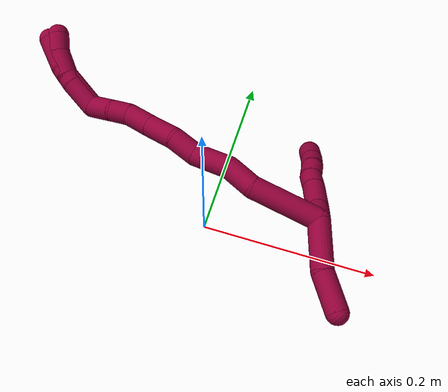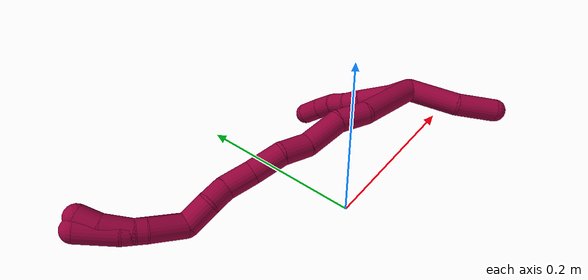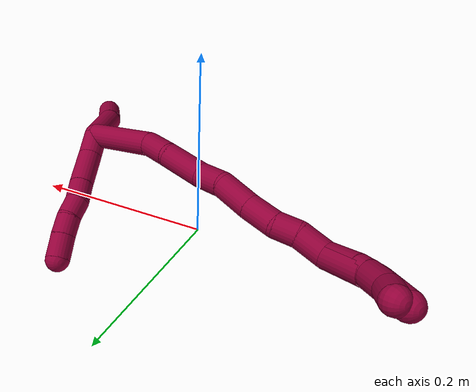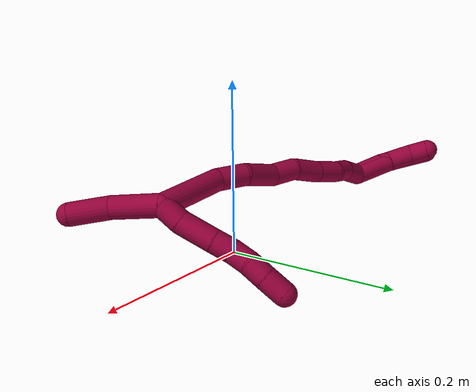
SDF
<sdf version="1.7">
 <world name="default">
  <model name="8">
   <static>0</static>
   <link name="8">
    <collision name="collision-cylinder-e_1_2_8">
     <pose>-0.009611 0.006423 0.005 -0.909395 -0.868093 0.445676</pose>
     <geometry><cylinder><radius>0.0125</radius><length>0.025189</length></cylinder></geometry>
     <surface>
      <friction><ode><mu>1.16</mu><mu2>1.16</mu2><slip1>0</slip1><slip2>0</slip2></ode></friction>
      <contact><ode><kp>1e+06</kp><kd>1</kd><max_vel>0</max_vel><min_depth>0.001</min_depth></ode></contact>
     </surface>
    </collision>
    <visual name="visual-cylinder-e_1_2_8">
     <pose>-0.009611 0.006423 0.005 -0.909395 -0.868093 0.445676</pose>
     <geometry><cylinder><radius>0.0125</radius><length>0.025189</length></cylinder></geometry>
     <material><ambient>0.584314 0 0.227451 1</ambient></material>
    </visual>
    <collision name="collision-cylinder-e_2_8_9">
     <pose>-0.031211 0.023173 0.02058 -0.773239 -0.681359 0.286662</pose>
     <geometry><cylinder><radius>0.0125</radius><length>0.03807</length></cylinder></geometry>
     <surface>
      <friction><ode><mu>1.16</mu><mu2>1.16</mu2><slip1>0</slip1><slip2>0</slip2></ode></friction>
      <contact><ode><kp>1e+06</kp><kd>1</kd><max_vel>0</max_vel><min_depth>0.001</min_depth></ode></contact>
     </surface>
    </collision>
    <visual name="visual-cylinder-e_2_8_9">
     <pose>-0.031211 0.023173 0.02058 -0.773239 -0.681359 0.286662</pose>
     <geometry><cylinder><radius>0.0125</radius><length>0.03807</length></cylinder></geometry>
     <material><ambient>0.584314 0 0.227451 1</ambient></material>
    </visual>
    <collision name="collision-cylinder-e_3_9_10">
     <pose>-0.049925 0.03865 0.037257 -0.701487 -0.700194 0.265615</pose>
     <geometry><cylinder><radius>0.0125</radius><length>0.020873</length></cylinder></geometry>
     <surface>
      <friction><ode><mu>1.16</mu><mu2>1.16</mu2><slip1>0</slip1><slip2>0</slip2></ode></friction>
      <contact><ode><kp>1e+06</kp><kd>1</kd><max_vel>0</max_vel><min_depth>0.001</min_depth></ode></contact>
     </surface>
    </collision>
    <visual name="visual-cylinder-e_3_9_10">
     <pose>-0.049925 0.03865 0.037257 -0.701487 -0.700194 0.265615</pose>
     <geometry><cylinder><radius>0.0125</radius><length>0.020873</length></cylinder></geometry>
     <material><ambient>0.584314 0 0.227451 1</ambient></material>
    </visual>
    <collision name="collision-cylinder-e_4_10_11">
     <pose>-0.062783 0.050522 0.047658 -1.0012 -0.655198 0.367648</pose>
     <geometry><cylinder><radius>0.0125</radius><length>0.020132</length></cylinder></geometry>
     <surface>
      <friction><ode><mu>1.16</mu><mu2>1.16</mu2><slip1>0</slip1><slip2>0</slip2></ode></friction>
      <contact><ode><kp>1e+06</kp><kd>1</kd><max_vel>0</max_vel><min_depth>0.001</min_depth></ode></contact>
     </surface>
    </collision>
    <visual name="visual-cylinder-e_4_10_11">
     <pose>-0.062783 0.050522 0.047658 -1.0012 -0.655198 0.367648</pose>
     <geometry><cylinder><radius>0.0125</radius><length>0.020132</length></cylinder></geometry>
     <material><ambient>0.584314 0 0.227451 1</ambient></material>
    </visual>
    <collision name="collision-cylinder-e_5_11_12">
     <pose>-0.076832 0.062711 0.056049 -0.928886 -0.859136 0.451196</pose>
     <geometry><cylinder><radius>0.0125</radius><length>0.020905</length></cylinder></geometry>
     <surface>
      <friction><ode><mu>1.16</mu><mu2>1.16</mu2><slip1>0</slip1><slip2>0</slip2></ode></friction>
      <contact><ode><kp>1e+06</kp><kd>1</kd><max_vel>0</max_vel><min_depth>0.001</min_depth></ode></contact>
     </surface>
    </collision>
    <visual name="visual-cylinder-e_5_11_12">
     <pose>-0.076832 0.062711 0.056049 -0.928886 -0.859136 0.451196</pose>
     <geometry><cylinder><radius>0.0125</radius><length>0.020905</length></cylinder></geometry>
     <material><ambient>0.584314 0 0.227451 1</ambient></material>
    </visual>
    <collision name="collision-cylinder-e_6_12_6">
     <pose>-0.094358 0.074002 0.065416 -0.834281 -0.885237 0.414069</pose>
     <geometry><cylinder><radius>0.0125</radius><length>0.024832</length></cylinder></geometry>
     <surface>
      <friction><ode><mu>1.16</mu><mu2>1.16</mu2><slip1>0</slip1><slip2>0</slip2></ode></friction>
      <contact><ode><kp>1e+06</kp><kd>1</kd><max_vel>0</max_vel><min_depth>0.001</min_depth></ode></contact>
     </surface>
    </collision>
    <visual name="visual-cylinder-e_6_12_6">
     <pose>-0.094358 0.074002 0.065416 -0.834281 -0.885237 0.414069</pose>
     <geometry><cylinder><radius>0.0125</radius><length>0.024832</length></cylinder></geometry>
     <material><ambient>0.584314 0 0.227451 1</ambient></material>
    </visual>
    <collision name="collision-cylinder-e_1_2_13">
     <pose>0.003458 -0.017698 -0.021387 2.45028 0.123938 0.341254</pose>
     <geometry><cylinder><radius>0.0125</radius><length>0.055949</length></cylinder></geometry>
     <surface>
      <friction><ode><mu>1.16</mu><mu2>1.16</mu2><slip1>0</slip1><slip2>0</slip2></ode></friction>
      <contact><ode><kp>1e+06</kp><kd>1</kd><max_vel>0</max_vel><min_depth>0.001</min_depth></ode></contact>
     </surface>
    </collision>
    <visual name="visual-cylinder-e_1_2_13">
     <pose>0.003458 -0.017698 -0.021387 2.45028 0.123938 0.341254</pose>
     <geometry><cylinder><radius>0.0125</radius><length>0.055949</length></cylinder></geometry>
     <material><ambient>0.584314 0 0.227451 1</ambient></material>
    </visual>
    <collision name="collision-cylinder-e_2_13_5">
     <pose>0.009038 -0.043984 -0.062944 2.73914 0.096477 0.464773</pose>
     <geometry><cylinder><radius>0.0125</radius><length>0.044051</length></cylinder></geometry>
     <surface>
      <friction><ode><mu>1.16</mu><mu2>1.16</mu2><slip1>0</slip1><slip2>0</slip2></ode></friction>
      <contact><ode><kp>1e+06</kp><kd>1</kd><max_vel>0</max_vel><min_depth>0.001</min_depth></ode></contact>
     </surface>
    </collision>
    <visual name="visual-cylinder-e_2_13_5">
     <pose>0.009038 -0.043984 -0.062944 2.73914 0.096477 0.464773</pose>
     <geometry><cylinder><radius>0.0125</radius><length>0.044051</length></cylinder></geometry>
     <material><ambient>0.584314 0 0.227451 1</ambient></material>
    </visual>
    <collision name="collision-cylinder-e_1_2_14">
     <pose>-0.001907 -0.015625 0.035219 0.417572 -0.049453 -0.01048</pose>
     <geometry><cylinder><radius>0.0125</radius><length>0.077153</length></cylinder></geometry>
     <surface>
      <friction><ode><mu>1.16</mu><mu2>1.16</mu2><slip1>0</slip1><slip2>0</slip2></ode></friction>
      <contact><ode><kp>1e+06</kp><kd>1</kd><max_vel>0</max_vel><min_depth>0.001</min_depth></ode></contact>
     </surface>
    </collision>
    <visual name="visual-cylinder-e_1_2_14">
     <pose>-0.001907 -0.015625 0.035219 0.417572 -0.049453 -0.01048</pose>
     <geometry><cylinder><radius>0.0125</radius><length>0.077153</length></cylinder></geometry>
     <material><ambient>0.584314 0 0.227451 1</ambient></material>
    </visual>
    <collision name="collision-cylinder-e_2_14_15">
     <pose>-0.007032 -0.033162 0.086709 0.11691 -0.193962 -0.011387</pose>
     <geometry><cylinder><radius>0.0125</radius><length>0.033392</length></cylinder></geometry>
     <surface>
      <friction><ode><mu>1.16</mu><mu2>1.16</mu2><slip1>0</slip1><slip2>0</slip2></ode></friction>
      <contact><ode><kp>1e+06</kp><kd>1</kd><max_vel>0</max_vel><min_depth>0.001</min_depth></ode></contact>
     </surface>
    </collision>
    <visual name="visual-cylinder-e_2_14_15">
     <pose>-0.007032 -0.033162 0.086709 0.11691 -0.193962 -0.011387</pose>
     <geometry><cylinder><radius>0.0125</radius><length>0.033392</length></cylinder></geometry>
     <material><ambient>0.584314 0 0.227451 1</ambient></material>
    </visual>
    <collision name="collision-cylinder-e_3_15_16">
     <pose>-0.018402 -0.042741 0.12104 0.401554 -0.393776 -0.081148</pose>
     <geometry><cylinder><radius>0.0125</radius><length>0.042493</length></cylinder></geometry>
     <surface>
      <friction><ode><mu>1.16</mu><mu2>1.16</mu2><slip1>0</slip1><slip2>0</slip2></ode></friction>
      <contact><ode><kp>1e+06</kp><kd>1</kd><max_vel>0</max_vel><min_depth>0.001</min_depth></ode></contact>
     </surface>
    </collision>
    <visual name="visual-cylinder-e_3_15_16">
     <pose>-0.018402 -0.042741 0.12104 0.401554 -0.393776 -0.081148</pose>
     <geometry><cylinder><radius>0.0125</radius><length>0.042493</length></cylinder></geometry>
     <material><ambient>0.584314 0 0.227451 1</ambient></material>
    </visual>
    <collision name="collision-cylinder-e_4_16_17">
     <pose>-0.028594 -0.053207 0.153908 0.186723 -0.134563 -0.012619</pose>
     <geometry><cylinder><radius>0.0125</radius><length>0.030415</length></cylinder></geometry>
     <surface>
      <friction><ode><mu>1.16</mu><mu2>1.16</mu2><slip1>0</slip1><slip2>0</slip2></ode></friction>
      <contact><ode><kp>1e+06</kp><kd>1</kd><max_vel>0</max_vel><min_depth>0.001</min_depth></ode></contact>
     </surface>
    </collision>
    <visual name="visual-cylinder-e_4_16_17">
     <pose>-0.028594 -0.053207 0.153908 0.186723 -0.134563 -0.012619</pose>
     <geometry><cylinder><radius>0.0125</radius><length>0.030415</length></cylinder></geometry>
     <material><ambient>0.584314 0 0.227451 1</ambient></material>
    </visual>
    <collision name="collision-cylinder-e_5_17_18">
     <pose>-0.038415 -0.060013 0.183967 0.256959 -0.45839 -0.060261</pose>
     <geometry><cylinder><radius>0.0125</radius><length>0.035168</length></cylinder></geometry>
     <surface>
      <friction><ode><mu>1.16</mu><mu2>1.16</mu2><slip1>0</slip1><slip2>0</slip2></ode></friction>
      <contact><ode><kp>1e+06</kp><kd>1</kd><max_vel>0</max_vel><min_depth>0.001</min_depth></ode></contact>
     </surface>
    </collision>
    <visual name="visual-cylinder-e_5_17_18">
     <pose>-0.038415 -0.060013 0.183967 0.256959 -0.45839 -0.060261</pose>
     <geometry><cylinder><radius>0.0125</radius><length>0.035168</length></cylinder></geometry>
     <material><ambient>0.584314 0 0.227451 1</ambient></material>
    </visual>
    <collision name="collision-cylinder-e_6_18_19">
     <pose>-0.051692 -0.067642 0.212972 0.257464 -0.3687 -0.048266</pose>
     <geometry><cylinder><radius>0.0125</radius><length>0.030496</length></cylinder></geometry>
     <surface>
      <friction><ode><mu>1.16</mu><mu2>1.16</mu2><slip1>0</slip1><slip2>0</slip2></ode></friction>
      <contact><ode><kp>1e+06</kp><kd>1</kd><max_vel>0</max_vel><min_depth>0.001</min_depth></ode></contact>
     </surface>
    </collision>
    <visual name="visual-cylinder-e_6_18_19">
     <pose>-0.051692 -0.067642 0.212972 0.257464 -0.3687 -0.048266</pose>
     <geometry><cylinder><radius>0.0125</radius><length>0.030496</length></cylinder></geometry>
     <material><ambient>0.584314 0 0.227451 1</ambient></material>
    </visual>
    <collision name="collision-cylinder-e_7_19_20">
     <pose>-0.060405 -0.077052 0.235754 0.570175 -0.291571 -0.086008</pose>
     <geometry><cylinder><radius>0.0125</radius><length>0.022393</length></cylinder></geometry>
     <surface>
      <friction><ode><mu>1.16</mu><mu2>1.16</mu2><slip1>0</slip1><slip2>0</slip2></ode></friction>
      <contact><ode><kp>1e+06</kp><kd>1</kd><max_vel>0</max_vel><min_depth>0.001</min_depth></ode></contact>
     </surface>
    </collision>
    <visual name="visual-cylinder-e_7_19_20">
     <pose>-0.060405 -0.077052 0.235754 0.570175 -0.291571 -0.086008</pose>
     <geometry><cylinder><radius>0.0125</radius><length>0.022393</length></cylinder></geometry>
     <material><ambient>0.584314 0 0.227451 1</ambient></material>
    </visual>
    <collision name="collision-cylinder-e_8_20_1">
     <pose>-0.071081 -0.088453 0.255543 0.480709 -0.550918 -0.138327</pose>
     <geometry><cylinder><radius>0.0125</radius><length>0.02849</length></cylinder></geometry>
     <surface>
      <friction><ode><mu>1.16</mu><mu2>1.16</mu2><slip1>0</slip1><slip2>0</slip2></ode></friction>
      <contact><ode><kp>1e+06</kp><kd>1</kd><max_vel>0</max_vel><min_depth>0.001</min_depth></ode></contact>
     </surface>
    </collision>
    <visual name="visual-cylinder-e_8_20_1">
     <pose>-0.071081 -0.088453 0.255543 0.480709 -0.550918 -0.138327</pose>
     <geometry><cylinder><radius>0.0125</radius><length>0.02849</length></cylinder></geometry>
     <material><ambient>0.584314 0 0.227451 1</ambient></material>
    </visual>
    <collision name="collision-cylinder-e_1_1_21">
     <pose>-0.078568 -0.094048 0.290667 -0.000683 -0.001238 0</pose>
     <geometry><cylinder><radius>0.0125</radius><length>0.048725</length></cylinder></geometry>
     <surface>
      <friction><ode><mu>1.16</mu><mu2>1.16</mu2><slip1>0</slip1><slip2>0</slip2></ode></friction>
      <contact><ode><kp>1e+06</kp><kd>1</kd><max_vel>0</max_vel><min_depth>0.001</min_depth></ode></contact>
     </surface>
    </collision>
    <visual name="visual-cylinder-e_1_1_21">
     <pose>-0.078568 -0.094048 0.290667 -0.000683 -0.001238 0</pose>
     <geometry><cylinder><radius>0.0125</radius><length>0.048725</length></cylinder></geometry>
     <material><ambient>0.584314 0 0.227451 1</ambient></material>
    </visual>
    <collision name="collision-cylinder-e_2_21_22">
     <pose>-0.078062 -0.089335 0.329013 -0.324026 0.036313 -0.005936</pose>
     <geometry><cylinder><radius>0.0125</radius><length>0.029522</length></cylinder></geometry>
     <surface>
      <friction><ode><mu>1.16</mu><mu2>1.16</mu2><slip1>0</slip1><slip2>0</slip2></ode></friction>
      <contact><ode><kp>1e+06</kp><kd>1</kd><max_vel>0</max_vel><min_depth>0.001</min_depth></ode></contact>
     </surface>
    </collision>
    <visual name="visual-cylinder-e_2_21_22">
     <pose>-0.078062 -0.089335 0.329013 -0.324026 0.036313 -0.005936</pose>
     <geometry><cylinder><radius>0.0125</radius><length>0.029522</length></cylinder></geometry>
     <material><ambient>0.584314 0 0.227451 1</ambient></material>
    </visual>
    <collision name="collision-cylinder-e_3_22_4">
     <pose>-0.076713 -0.078433 0.351893 -0.609093 0.074807 -0.023524</pose>
     <geometry><cylinder><radius>0.0125</radius><length>0.021753</length></cylinder></geometry>
     <surface>
      <friction><ode><mu>1.16</mu><mu2>1.16</mu2><slip1>0</slip1><slip2>0</slip2></ode></friction>
      <contact><ode><kp>1e+06</kp><kd>1</kd><max_vel>0</max_vel><min_depth>0.001</min_depth></ode></contact>
     </surface>
    </collision>
    <visual name="visual-cylinder-e_3_22_4">
     <pose>-0.076713 -0.078433 0.351893 -0.609093 0.074807 -0.023524</pose>
     <geometry><cylinder><radius>0.0125</radius><length>0.021753</length></cylinder></geometry>
     <material><ambient>0.584314 0 0.227451 1</ambient></material>
    </visual>
    <collision name="collision-cylinder-e_1_1_23">
     <pose>-0.078231 -0.094503 0.284503 0.02408 0.016853 0.000203</pose>
     <geometry><cylinder><radius>0.0125</radius><length>0.036411</length></cylinder></geometry>
     <surface>
      <friction><ode><mu>1.16</mu><mu2>1.16</mu2><slip1>0</slip1><slip2>0</slip2></ode></friction>
      <contact><ode><kp>1e+06</kp><kd>1</kd><max_vel>0</max_vel><min_depth>0.001</min_depth></ode></contact>
     </surface>
    </collision>
    <visual name="visual-cylinder-e_1_1_23">
     <pose>-0.078231 -0.094503 0.284503 0.02408 0.016853 0.000203</pose>
     <geometry><cylinder><radius>0.0125</radius><length>0.036411</length></cylinder></geometry>
     <material><ambient>0.584314 0 0.227451 1</ambient></material>
    </visual>
    <collision name="collision-cylinder-e_2_23_24">
     <pose>-0.078665 -0.093888 0.314311 -0.090534 -0.063454 0.002875</pose>
     <geometry><cylinder><radius>0.0125</radius><length>0.023364</length></cylinder></geometry>
     <surface>
      <friction><ode><mu>1.16</mu><mu2>1.16</mu2><slip1>0</slip1><slip2>0</slip2></ode></friction>
      <contact><ode><kp>1e+06</kp><kd>1</kd><max_vel>0</max_vel><min_depth>0.001</min_depth></ode></contact>
     </surface>
    </collision>
    <visual name="visual-cylinder-e_2_23_24">
     <pose>-0.078665 -0.093888 0.314311 -0.090534 -0.063454 0.002875</pose>
     <geometry><cylinder><radius>0.0125</radius><length>0.023364</length></cylinder></geometry>
     <material><ambient>0.584314 0 0.227451 1</ambient></material>
    </visual>
    <collision name="collision-cylinder-e_3_24_3">
     <pose>-0.080463 -0.087344 0.345242 -0.276841 -0.0526 0.00733</pose>
     <geometry><cylinder><radius>0.0125</radius><length>0.040225</length></cylinder></geometry>
     <surface>
      <friction><ode><mu>1.16</mu><mu2>1.16</mu2><slip1>0</slip1><slip2>0</slip2></ode></friction>
      <contact><ode><kp>1e+06</kp><kd>1</kd><max_vel>0</max_vel><min_depth>0.001</min_depth></ode></contact>
     </surface>
    </collision>
    <visual name="visual-cylinder-e_3_24_3">
     <pose>-0.080463 -0.087344 0.345242 -0.276841 -0.0526 0.00733</pose>
     <geometry><cylinder><radius>0.0125</radius><length>0.040225</length></cylinder></geometry>
     <material><ambient>0.584314 0 0.227451 1</ambient></material>
    </visual>
    <collision name="collision-sphere-3">
     <pose>-0.08152 -0.081855 0.364562 0 -0 0</pose>
     <geometry><sphere><radius>0.0125</radius></sphere></geometry>
     <surface>
      <friction><ode><mu>1.16</mu><mu2>1.16</mu2><slip1>0</slip1><slip2>0</slip2></ode></friction>
      <contact><ode><kp>1e+06</kp><kd>1</kd><max_vel>0</max_vel><min_depth>0.001</min_depth></ode></contact>
     </surface>
    </collision>
    <visual name="visual-sphere-3">
     <pose>-0.08152 -0.081855 0.364562 0 -0 0</pose>
     <geometry><sphere><radius>0.0125</radius></sphere></geometry>
     <material><ambient>0.584314 0 0.227451 1</ambient></material>
    </visual>
    <collision name="collision-sphere-24">
     <pose>-0.079405 -0.092834 0.325922 0 -0 0</pose>
     <geometry><sphere><radius>0.0125</radius></sphere></geometry>
     <surface>
      <friction><ode><mu>1.16</mu><mu2>1.16</mu2><slip1>0</slip1><slip2>0</slip2></ode></friction>
      <contact><ode><kp>1e+06</kp><kd>1</kd><max_vel>0</max_vel><min_depth>0.001</min_depth></ode></contact>
     </surface>
    </collision>
    <visual name="visual-sphere-24">
     <pose>-0.079405 -0.092834 0.325922 0 -0 0</pose>
     <geometry><sphere><radius>0.0125</radius></sphere></geometry>
     <material><ambient>0.584314 0 0.227451 1</ambient></material>
    </visual>
    <collision name="collision-sphere-23">
     <pose>-0.077924 -0.094942 0.302701 0 -0 0</pose>
     <geometry><sphere><radius>0.0125</radius></sphere></geometry>
     <surface>
      <friction><ode><mu>1.16</mu><mu2>1.16</mu2><slip1>0</slip1><slip2>0</slip2></ode></friction>
      <contact><ode><kp>1e+06</kp><kd>1</kd><max_vel>0</max_vel><min_depth>0.001</min_depth></ode></contact>
     </surface>
    </collision>
    <visual name="visual-sphere-23">
     <pose>-0.077924 -0.094942 0.302701 0 -0 0</pose>
     <geometry><sphere><radius>0.0125</radius></sphere></geometry>
     <material><ambient>0.584314 0 0.227451 1</ambient></material>
    </visual>
    <collision name="collision-sphere-4">
     <pose>-0.0759 -0.072228 0.360788 0 -0 0</pose>
     <geometry><sphere><radius>0.0125</radius></sphere></geometry>
     <surface>
      <friction><ode><mu>1.16</mu><mu2>1.16</mu2><slip1>0</slip1><slip2>0</slip2></ode></friction>
      <contact><ode><kp>1e+06</kp><kd>1</kd><max_vel>0</max_vel><min_depth>0.001</min_depth></ode></contact>
     </surface>
    </collision>
    <visual name="visual-sphere-4">
     <pose>-0.0759 -0.072228 0.360788 0 -0 0</pose>
     <geometry><sphere><radius>0.0125</radius></sphere></geometry>
     <material><ambient>0.584314 0 0.227451 1</ambient></material>
    </visual>
    <collision name="collision-sphere-22">
     <pose>-0.077526 -0.084639 0.342997 0 -0 0</pose>
     <geometry><sphere><radius>0.0125</radius></sphere></geometry>
     <surface>
      <friction><ode><mu>1.16</mu><mu2>1.16</mu2><slip1>0</slip1><slip2>0</slip2></ode></friction>
      <contact><ode><kp>1e+06</kp><kd>1</kd><max_vel>0</max_vel><min_depth>0.001</min_depth></ode></contact>
     </surface>
    </collision>
    <visual name="visual-sphere-22">
     <pose>-0.077526 -0.084639 0.342997 0 -0 0</pose>
     <geometry><sphere><radius>0.0125</radius></sphere></geometry>
     <material><ambient>0.584314 0 0.227451 1</ambient></material>
    </visual>
    <collision name="collision-sphere-21">
     <pose>-0.078598 -0.094032 0.31503 0 -0 0</pose>
     <geometry><sphere><radius>0.0125</radius></sphere></geometry>
     <surface>
      <friction><ode><mu>1.16</mu><mu2>1.16</mu2><slip1>0</slip1><slip2>0</slip2></ode></friction>
      <contact><ode><kp>1e+06</kp><kd>1</kd><max_vel>0</max_vel><min_depth>0.001</min_depth></ode></contact>
     </surface>
    </collision>
    <visual name="visual-sphere-21">
     <pose>-0.078598 -0.094032 0.31503 0 -0 0</pose>
     <geometry><sphere><radius>0.0125</radius></sphere></geometry>
     <material><ambient>0.584314 0 0.227451 1</ambient></material>
    </visual>
    <collision name="collision-sphere-1">
     <pose>-0.078538 -0.094065 0.266305 0 -0 0</pose>
     <geometry><sphere><radius>0.0125</radius></sphere></geometry>
     <surface>
      <friction><ode><mu>1.16</mu><mu2>1.16</mu2><slip1>0</slip1><slip2>0</slip2></ode></friction>
      <contact><ode><kp>1e+06</kp><kd>1</kd><max_vel>0</max_vel><min_depth>0.001</min_depth></ode></contact>
     </surface>
    </collision>
    <visual name="visual-sphere-1">
     <pose>-0.078538 -0.094065 0.266305 0 -0 0</pose>
     <geometry><sphere><radius>0.0125</radius></sphere></geometry>
     <material><ambient>0.584314 0 0.227451 1</ambient></material>
    </visual>
    <collision name="collision-sphere-12">
     <pose>-0.084747 0.068179 0.060137 0 -0 0</pose>
     <geometry><sphere><radius>0.0125</radius></sphere></geometry>
     <surface>
      <friction><ode><mu>1.16</mu><mu2>1.16</mu2><slip1>0</slip1><slip2>0</slip2></ode></friction>
      <contact><ode><kp>1e+06</kp><kd>1</kd><max_vel>0</max_vel><min_depth>0.001</min_depth></ode></contact>
     </surface>
    </collision>
    <visual name="visual-sphere-12">
     <pose>-0.084747 0.068179 0.060137 0 -0 0</pose>
     <geometry><sphere><radius>0.0125</radius></sphere></geometry>
     <material><ambient>0.584314 0 0.227451 1</ambient></material>
    </visual>
    <collision name="collision-sphere-11">
     <pose>-0.068916 0.057243 0.051962 0 -0 0</pose>
     <geometry><sphere><radius>0.0125</radius></sphere></geometry>
     <surface>
      <friction><ode><mu>1.16</mu><mu2>1.16</mu2><slip1>0</slip1><slip2>0</slip2></ode></friction>
      <contact><ode><kp>1e+06</kp><kd>1</kd><max_vel>0</max_vel><min_depth>0.001</min_depth></ode></contact>
     </surface>
    </collision>
    <visual name="visual-sphere-11">
     <pose>-0.068916 0.057243 0.051962 0 -0 0</pose>
     <geometry><sphere><radius>0.0125</radius></sphere></geometry>
     <material><ambient>0.584314 0 0.227451 1</ambient></material>
    </visual>
    <collision name="collision-sphere-10">
     <pose>-0.05665 0.0438 0.043353 0 -0 0</pose>
     <geometry><sphere><radius>0.0125</radius></sphere></geometry>
     <surface>
      <friction><ode><mu>1.16</mu><mu2>1.16</mu2><slip1>0</slip1><slip2>0</slip2></ode></friction>
      <contact><ode><kp>1e+06</kp><kd>1</kd><max_vel>0</max_vel><min_depth>0.001</min_depth></ode></contact>
     </surface>
    </collision>
    <visual name="visual-sphere-10">
     <pose>-0.05665 0.0438 0.043353 0 -0 0</pose>
     <geometry><sphere><radius>0.0125</radius></sphere></geometry>
     <material><ambient>0.584314 0 0.227451 1</ambient></material>
    </visual>
    <collision name="collision-sphere-9">
     <pose>-0.0432 0.033499 0.03116 0 -0 0</pose>
     <geometry><sphere><radius>0.0125</radius></sphere></geometry>
     <surface>
      <friction><ode><mu>1.16</mu><mu2>1.16</mu2><slip1>0</slip1><slip2>0</slip2></ode></friction>
      <contact><ode><kp>1e+06</kp><kd>1</kd><max_vel>0</max_vel><min_depth>0.001</min_depth></ode></contact>
     </surface>
    </collision>
    <visual name="visual-sphere-9">
     <pose>-0.0432 0.033499 0.03116 0 -0 0</pose>
     <geometry><sphere><radius>0.0125</radius></sphere></geometry>
     <material><ambient>0.584314 0 0.227451 1</ambient></material>
    </visual>
    <collision name="collision-sphere-2">
     <geometry><sphere><radius>0.0125</radius></sphere></geometry>
     <surface>
      <friction><ode><mu>1.16</mu><mu2>1.16</mu2><slip1>0</slip1><slip2>0</slip2></ode></friction>
      <contact><ode><kp>1e+06</kp><kd>1</kd><max_vel>0</max_vel><min_depth>0.001</min_depth></ode></contact>
     </surface>
    </collision>
    <visual name="visual-sphere-2">
     <geometry><sphere><radius>0.0125</radius></sphere></geometry>
     <material><ambient>0.584314 0 0.227451 1</ambient></material>
    </visual>
    <collision name="collision-sphere-19">
     <pose>-0.057187 -0.071263 0.226727 0 -0 0</pose>
     <geometry><sphere><radius>0.0125</radius></sphere></geometry>
     <surface>
      <friction><ode><mu>1.16</mu><mu2>1.16</mu2><slip1>0</slip1><slip2>0</slip2></ode></friction>
      <contact><ode><kp>1e+06</kp><kd>1</kd><max_vel>0</max_vel><min_depth>0.001</min_depth></ode></contact>
     </surface>
    </collision>
    <visual name="visual-sphere-19">
     <pose>-0.057187 -0.071263 0.226727 0 -0 0</pose>
     <geometry><sphere><radius>0.0125</radius></sphere></geometry>
     <material><ambient>0.584314 0 0.227451 1</ambient></material>
    </visual>
    <collision name="collision-sphere-8">
     <pose>-0.019222 0.012846 0.009999 0 -0 0</pose>
     <geometry><sphere><radius>0.0125</radius></sphere></geometry>
     <surface>
      <friction><ode><mu>1.16</mu><mu2>1.16</mu2><slip1>0</slip1><slip2>0</slip2></ode></friction>
      <contact><ode><kp>1e+06</kp><kd>1</kd><max_vel>0</max_vel><min_depth>0.001</min_depth></ode></contact>
     </surface>
    </collision>
    <visual name="visual-sphere-8">
     <pose>-0.019222 0.012846 0.009999 0 -0 0</pose>
     <geometry><sphere><radius>0.0125</radius></sphere></geometry>
     <material><ambient>0.584314 0 0.227451 1</ambient></material>
    </visual>
    <collision name="collision-sphere-6">
     <pose>-0.103969 0.079825 0.070696 0 -0 0</pose>
     <geometry><sphere><radius>0.0125</radius></sphere></geometry>
     <surface>
      <friction><ode><mu>1.16</mu><mu2>1.16</mu2><slip1>0</slip1><slip2>0</slip2></ode></friction>
      <contact><ode><kp>1e+06</kp><kd>1</kd><max_vel>0</max_vel><min_depth>0.001</min_depth></ode></contact>
     </surface>
    </collision>
    <visual name="visual-sphere-6">
     <pose>-0.103969 0.079825 0.070696 0 -0 0</pose>
     <geometry><sphere><radius>0.0125</radius></sphere></geometry>
     <material><ambient>0.584314 0 0.227451 1</ambient></material>
    </visual>
    <collision name="collision-sphere-13">
     <pose>0.006917 -0.035397 -0.042773 0 -0 0</pose>
     <geometry><sphere><radius>0.0125</radius></sphere></geometry>
     <surface>
      <friction><ode><mu>1.16</mu><mu2>1.16</mu2><slip1>0</slip1><slip2>0</slip2></ode></friction>
      <contact><ode><kp>1e+06</kp><kd>1</kd><max_vel>0</max_vel><min_depth>0.001</min_depth></ode></contact>
     </surface>
    </collision>
    <visual name="visual-sphere-13">
     <pose>0.006917 -0.035397 -0.042773 0 -0 0</pose>
     <geometry><sphere><radius>0.0125</radius></sphere></geometry>
     <material><ambient>0.584314 0 0.227451 1</ambient></material>
    </visual>
    <collision name="collision-sphere-5">
     <pose>0.01116 -0.05257 -0.083116 0 -0 0</pose>
     <geometry><sphere><radius>0.0125</radius></sphere></geometry>
     <surface>
      <friction><ode><mu>1.16</mu><mu2>1.16</mu2><slip1>0</slip1><slip2>0</slip2></ode></friction>
      <contact><ode><kp>1e+06</kp><kd>1</kd><max_vel>0</max_vel><min_depth>0.001</min_depth></ode></contact>
     </surface>
    </collision>
    <visual name="visual-sphere-5">
     <pose>0.01116 -0.05257 -0.083116 0 -0 0</pose>
     <geometry><sphere><radius>0.0125</radius></sphere></geometry>
     <material><ambient>0.584314 0 0.227451 1</ambient></material>
    </visual>
    <collision name="collision-sphere-14">
     <pose>-0.003814 -0.031251 0.070438 0 -0 0</pose>
     <geometry><sphere><radius>0.0125</radius></sphere></geometry>
     <surface>
      <friction><ode><mu>1.16</mu><mu2>1.16</mu2><slip1>0</slip1><slip2>0</slip2></ode></friction>
      <contact><ode><kp>1e+06</kp><kd>1</kd><max_vel>0</max_vel><min_depth>0.001</min_depth></ode></contact>
     </surface>
    </collision>
    <visual name="visual-sphere-14">
     <pose>-0.003814 -0.031251 0.070438 0 -0 0</pose>
     <geometry><sphere><radius>0.0125</radius></sphere></geometry>
     <material><ambient>0.584314 0 0.227451 1</ambient></material>
    </visual>
    <collision name="collision-sphere-15">
     <pose>-0.01025 -0.035073 0.10298 0 -0 0</pose>
     <geometry><sphere><radius>0.0125</radius></sphere></geometry>
     <surface>
      <friction><ode><mu>1.16</mu><mu2>1.16</mu2><slip1>0</slip1><slip2>0</slip2></ode></friction>
      <contact><ode><kp>1e+06</kp><kd>1</kd><max_vel>0</max_vel><min_depth>0.001</min_depth></ode></contact>
     </surface>
    </collision>
    <visual name="visual-sphere-15">
     <pose>-0.01025 -0.035073 0.10298 0 -0 0</pose>
     <geometry><sphere><radius>0.0125</radius></sphere></geometry>
     <material><ambient>0.584314 0 0.227451 1</ambient></material>
    </visual>
    <collision name="collision-sphere-16">
     <pose>-0.026554 -0.05041 0.1391 0 -0 0</pose>
     <geometry><sphere><radius>0.0125</radius></sphere></geometry>
     <surface>
      <friction><ode><mu>1.16</mu><mu2>1.16</mu2><slip1>0</slip1><slip2>0</slip2></ode></friction>
      <contact><ode><kp>1e+06</kp><kd>1</kd><max_vel>0</max_vel><min_depth>0.001</min_depth></ode></contact>
     </surface>
    </collision>
    <visual name="visual-sphere-16">
     <pose>-0.026554 -0.05041 0.1391 0 -0 0</pose>
     <geometry><sphere><radius>0.0125</radius></sphere></geometry>
     <material><ambient>0.584314 0 0.227451 1</ambient></material>
    </visual>
    <collision name="collision-sphere-17">
     <pose>-0.030634 -0.056005 0.168716 0 -0 0</pose>
     <geometry><sphere><radius>0.0125</radius></sphere></geometry>
     <surface>
      <friction><ode><mu>1.16</mu><mu2>1.16</mu2><slip1>0</slip1><slip2>0</slip2></ode></friction>
      <contact><ode><kp>1e+06</kp><kd>1</kd><max_vel>0</max_vel><min_depth>0.001</min_depth></ode></contact>
     </surface>
    </collision>
    <visual name="visual-sphere-17">
     <pose>-0.030634 -0.056005 0.168716 0 -0 0</pose>
     <geometry><sphere><radius>0.0125</radius></sphere></geometry>
     <material><ambient>0.584314 0 0.227451 1</ambient></material>
    </visual>
    <collision name="collision-sphere-18">
     <pose>-0.046196 -0.06402 0.199218 0 -0 0</pose>
     <geometry><sphere><radius>0.0125</radius></sphere></geometry>
     <surface>
      <friction><ode><mu>1.16</mu><mu2>1.16</mu2><slip1>0</slip1><slip2>0</slip2></ode></friction>
      <contact><ode><kp>1e+06</kp><kd>1</kd><max_vel>0</max_vel><min_depth>0.001</min_depth></ode></contact>
     </surface>
    </collision>
    <visual name="visual-sphere-18">
     <pose>-0.046196 -0.06402 0.199218 0 -0 0</pose>
     <geometry><sphere><radius>0.0125</radius></sphere></geometry>
     <material><ambient>0.584314 0 0.227451 1</ambient></material>
    </visual>
    <collision name="collision-sphere-20">
     <pose>-0.063624 -0.08284 0.244781 0 -0 0</pose>
     <geometry><sphere><radius>0.0125</radius></sphere></geometry>
     <surface>
      <friction><ode><mu>1.16</mu><mu2>1.16</mu2><slip1>0</slip1><slip2>0</slip2></ode></friction>
      <contact><ode><kp>1e+06</kp><kd>1</kd><max_vel>0</max_vel><min_depth>0.001</min_depth></ode></contact>
     </surface>
    </collision>
    <visual name="visual-sphere-20">
     <pose>-0.063624 -0.08284 0.244781 0 -0 0</pose>
     <geometry><sphere><radius>0.0125</radius></sphere></geometry>
     <material><ambient>0.584314 0 0.227451 1</ambient></material>
    </visual>
    <inertial>
     <pose>-0.041543 -0.038869 0.14074 0 -0 0</pose>
     <mass>0.75</mass>
     <inertia><ixx>0.000131</ixx><ixy>0</ixy><ixz>0</ixz><iyy>9.8e-05</iyy><iyz>0</iyz><izz>8.1e-05</izz></inertia>
    </inertial>
   </link>
   <pose>0.125098 0.005016 0.088347 0.289171 -1.31003 -0.846479</pose>
  </model>
 </world>
</sdf>
